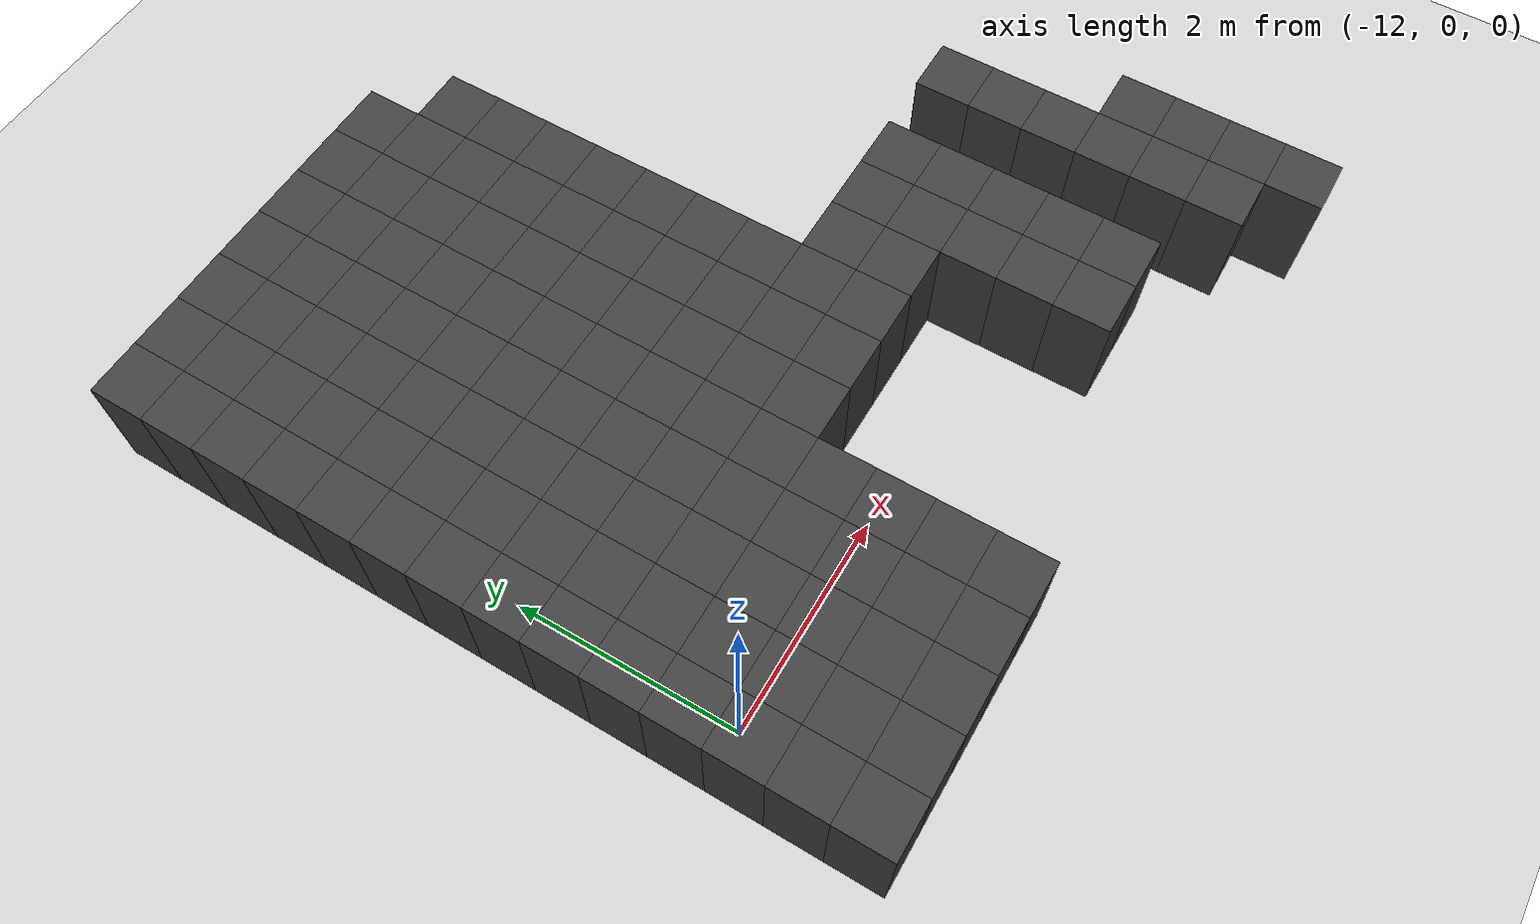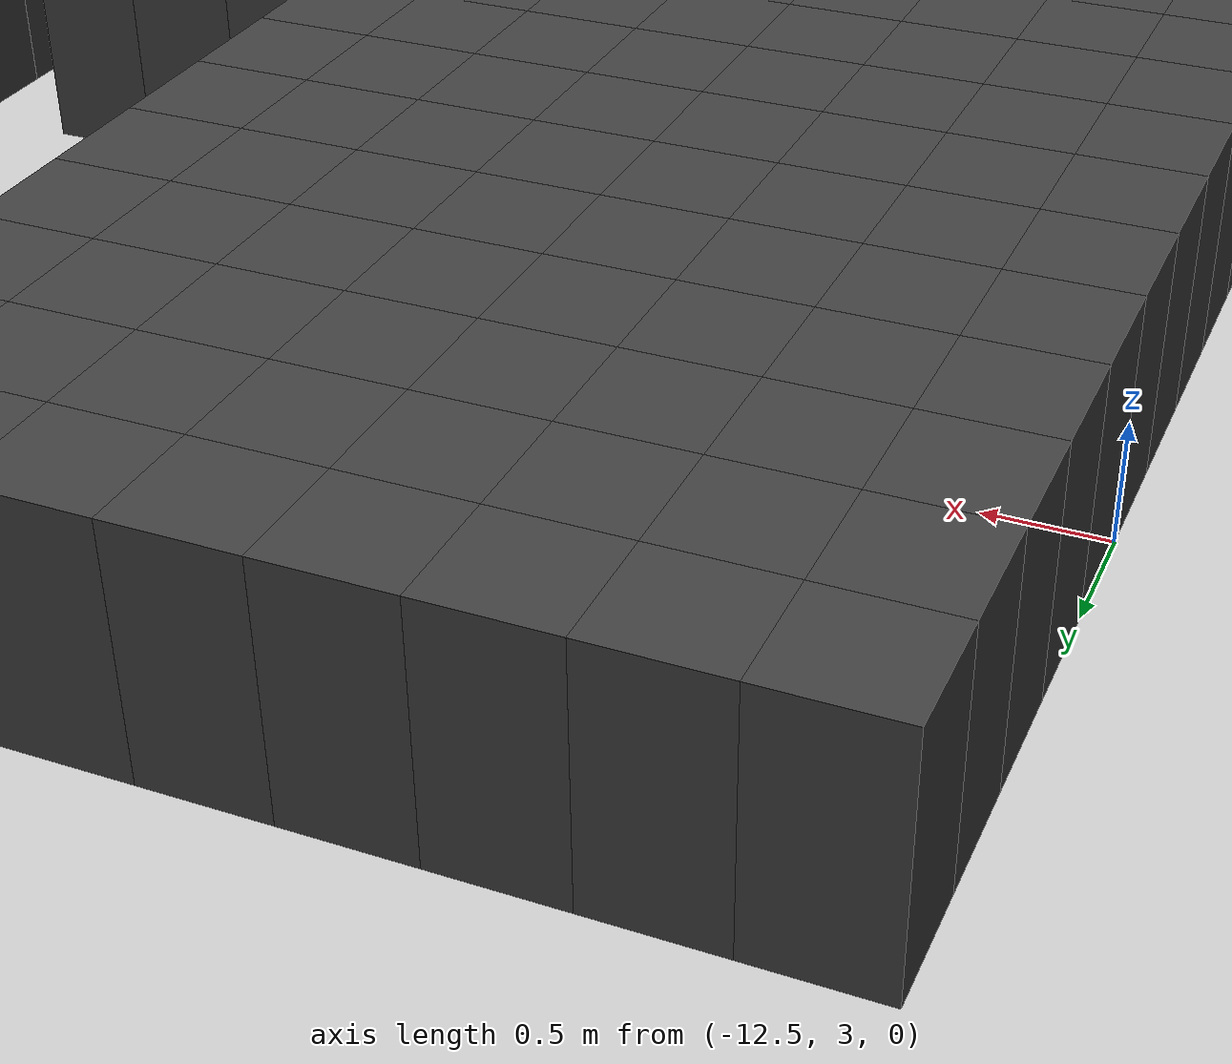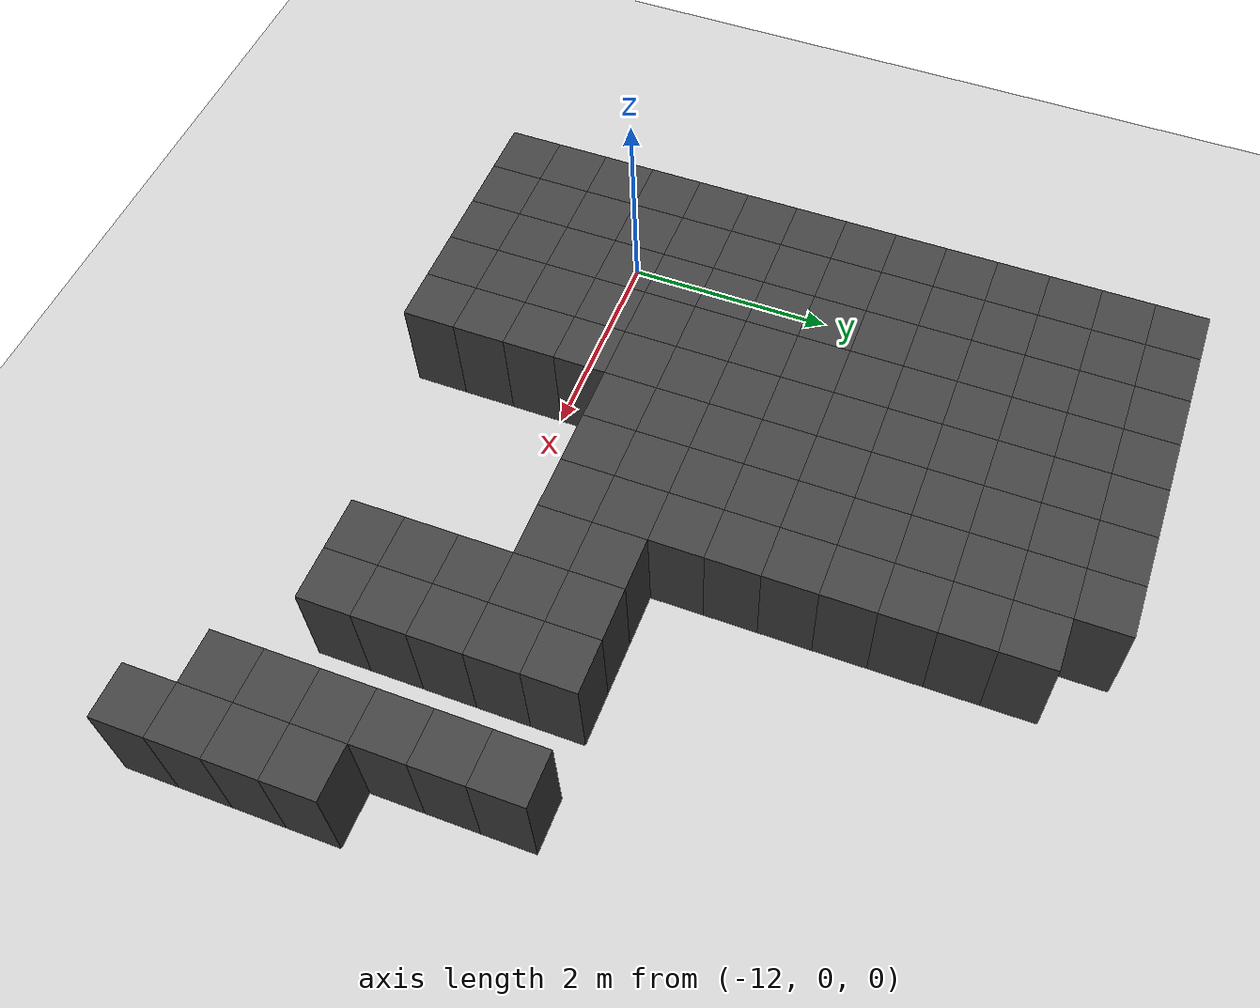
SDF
<sdf version="1.7">
 <world name="map_14888">
  <model name="ground_plane">
   <static>true</static>
   <link name="link">
    <collision name="collision">
     <geometry><plane><normal>0 0 1</normal><size>200 200</size></plane></geometry>
    </collision>
    <visual name="visual">
     <geometry><plane><normal>0 0 1</normal><size>200 200</size></plane></geometry>
     <material><ambient>0.8 0.8 0.8 1</ambient><diffuse>0.8 0.8 0.8 1</diffuse></material>
    </visual>
   </link>
  </model>
  <model name="maze_environment">
   <static>true</static>
   <link name="wall_527">
    <pose>-12.250 5.250 0.500 0 0 0</pose>
    <collision name="col"><geometry><box><size>0.5 0.5 1.0</size></box></geometry></collision>
    <visual name="vis">
     <geometry><box><size>0.5 0.5 1.0</size></box></geometry>
     <material><ambient>0.15 0.15 0.15 1</ambient><diffuse>0.25 0.25 0.25 1</diffuse></material>
    </visual>
   </link>
   <link name="wall_528">
    <pose>-11.750 5.250 0.500 0 0 0</pose>
    <collision name="col"><geometry><box><size>0.5 0.5 1.0</size></box></geometry></collision>
    <visual name="vis">
     <geometry><box><size>0.5 0.5 1.0</size></box></geometry>
     <material><ambient>0.15 0.15 0.15 1</ambient><diffuse>0.25 0.25 0.25 1</diffuse></material>
    </visual>
   </link>
   <link name="wall_529">
    <pose>-11.250 5.250 0.500 0 0 0</pose>
    <collision name="col"><geometry><box><size>0.5 0.5 1.0</size></box></geometry></collision>
    <visual name="vis">
     <geometry><box><size>0.5 0.5 1.0</size></box></geometry>
     <material><ambient>0.15 0.15 0.15 1</ambient><diffuse>0.25 0.25 0.25 1</diffuse></material>
    </visual>
   </link>
   <link name="wall_530">
    <pose>-10.750 5.250 0.500 0 0 0</pose>
    <collision name="col"><geometry><box><size>0.5 0.5 1.0</size></box></geometry></collision>
    <visual name="vis">
     <geometry><box><size>0.5 0.5 1.0</size></box></geometry>
     <material><ambient>0.15 0.15 0.15 1</ambient><diffuse>0.25 0.25 0.25 1</diffuse></material>
    </visual>
   </link>
   <link name="wall_531">
    <pose>-10.250 5.250 0.500 0 0 0</pose>
    <collision name="col"><geometry><box><size>0.5 0.5 1.0</size></box></geometry></collision>
    <visual name="vis">
     <geometry><box><size>0.5 0.5 1.0</size></box></geometry>
     <material><ambient>0.15 0.15 0.15 1</ambient><diffuse>0.25 0.25 0.25 1</diffuse></material>
    </visual>
   </link>
   <link name="wall_532">
    <pose>-9.750 5.250 0.500 0 0 0</pose>
    <collision name="col"><geometry><box><size>0.5 0.5 1.0</size></box></geometry></collision>
    <visual name="vis">
     <geometry><box><size>0.5 0.5 1.0</size></box></geometry>
     <material><ambient>0.15 0.15 0.15 1</ambient><diffuse>0.25 0.25 0.25 1</diffuse></material>
    </visual>
   </link>
   <link name="wall_533">
    <pose>-9.250 5.250 0.500 0 0 0</pose>
    <collision name="col"><geometry><box><size>0.5 0.5 1.0</size></box></geometry></collision>
    <visual name="vis">
     <geometry><box><size>0.5 0.5 1.0</size></box></geometry>
     <material><ambient>0.15 0.15 0.15 1</ambient><diffuse>0.25 0.25 0.25 1</diffuse></material>
    </visual>
   </link>
   <link name="wall_562">
    <pose>-12.250 4.750 0.500 0 0 0</pose>
    <collision name="col"><geometry><box><size>0.5 0.5 1.0</size></box></geometry></collision>
    <visual name="vis">
     <geometry><box><size>0.5 0.5 1.0</size></box></geometry>
     <material><ambient>0.15 0.15 0.15 1</ambient><diffuse>0.25 0.25 0.25 1</diffuse></material>
    </visual>
   </link>
   <link name="wall_563">
    <pose>-11.750 4.750 0.500 0 0 0</pose>
    <collision name="col"><geometry><box><size>0.5 0.5 1.0</size></box></geometry></collision>
    <visual name="vis">
     <geometry><box><size>0.5 0.5 1.0</size></box></geometry>
     <material><ambient>0.15 0.15 0.15 1</ambient><diffuse>0.25 0.25 0.25 1</diffuse></material>
    </visual>
   </link>
   <link name="wall_564">
    <pose>-11.250 4.750 0.500 0 0 0</pose>
    <collision name="col"><geometry><box><size>0.5 0.5 1.0</size></box></geometry></collision>
    <visual name="vis">
     <geometry><box><size>0.5 0.5 1.0</size></box></geometry>
     <material><ambient>0.15 0.15 0.15 1</ambient><diffuse>0.25 0.25 0.25 1</diffuse></material>
    </visual>
   </link>
   <link name="wall_565">
    <pose>-10.750 4.750 0.500 0 0 0</pose>
    <collision name="col"><geometry><box><size>0.5 0.5 1.0</size></box></geometry></collision>
    <visual name="vis">
     <geometry><box><size>0.5 0.5 1.0</size></box></geometry>
     <material><ambient>0.15 0.15 0.15 1</ambient><diffuse>0.25 0.25 0.25 1</diffuse></material>
    </visual>
   </link>
   <link name="wall_566">
    <pose>-10.250 4.750 0.500 0 0 0</pose>
    <collision name="col"><geometry><box><size>0.5 0.5 1.0</size></box></geometry></collision>
    <visual name="vis">
     <geometry><box><size>0.5 0.5 1.0</size></box></geometry>
     <material><ambient>0.15 0.15 0.15 1</ambient><diffuse>0.25 0.25 0.25 1</diffuse></material>
    </visual>
   </link>
   <link name="wall_567">
    <pose>-9.750 4.750 0.500 0 0 0</pose>
    <collision name="col"><geometry><box><size>0.5 0.5 1.0</size></box></geometry></collision>
    <visual name="vis">
     <geometry><box><size>0.5 0.5 1.0</size></box></geometry>
     <material><ambient>0.15 0.15 0.15 1</ambient><diffuse>0.25 0.25 0.25 1</diffuse></material>
    </visual>
   </link>
   <link name="wall_568">
    <pose>-9.250 4.750 0.500 0 0 0</pose>
    <collision name="col"><geometry><box><size>0.5 0.5 1.0</size></box></geometry></collision>
    <visual name="vis">
     <geometry><box><size>0.5 0.5 1.0</size></box></geometry>
     <material><ambient>0.15 0.15 0.15 1</ambient><diffuse>0.25 0.25 0.25 1</diffuse></material>
    </visual>
   </link>
   <link name="wall_569">
    <pose>-8.750 4.750 0.500 0 0 0</pose>
    <collision name="col"><geometry><box><size>0.5 0.5 1.0</size></box></geometry></collision>
    <visual name="vis">
     <geometry><box><size>0.5 0.5 1.0</size></box></geometry>
     <material><ambient>0.15 0.15 0.15 1</ambient><diffuse>0.25 0.25 0.25 1</diffuse></material>
    </visual>
   </link>
   <link name="wall_590">
    <pose>-12.250 4.250 0.500 0 0 0</pose>
    <collision name="col"><geometry><box><size>0.5 0.5 1.0</size></box></geometry></collision>
    <visual name="vis">
     <geometry><box><size>0.5 0.5 1.0</size></box></geometry>
     <material><ambient>0.15 0.15 0.15 1</ambient><diffuse>0.25 0.25 0.25 1</diffuse></material>
    </visual>
   </link>
   <link name="wall_591">
    <pose>-11.750 4.250 0.500 0 0 0</pose>
    <collision name="col"><geometry><box><size>0.5 0.5 1.0</size></box></geometry></collision>
    <visual name="vis">
     <geometry><box><size>0.5 0.5 1.0</size></box></geometry>
     <material><ambient>0.15 0.15 0.15 1</ambient><diffuse>0.25 0.25 0.25 1</diffuse></material>
    </visual>
   </link>
   <link name="wall_592">
    <pose>-11.250 4.250 0.500 0 0 0</pose>
    <collision name="col"><geometry><box><size>0.5 0.5 1.0</size></box></geometry></collision>
    <visual name="vis">
     <geometry><box><size>0.5 0.5 1.0</size></box></geometry>
     <material><ambient>0.15 0.15 0.15 1</ambient><diffuse>0.25 0.25 0.25 1</diffuse></material>
    </visual>
   </link>
   <link name="wall_593">
    <pose>-10.750 4.250 0.500 0 0 0</pose>
    <collision name="col"><geometry><box><size>0.5 0.5 1.0</size></box></geometry></collision>
    <visual name="vis">
     <geometry><box><size>0.5 0.5 1.0</size></box></geometry>
     <material><ambient>0.15 0.15 0.15 1</ambient><diffuse>0.25 0.25 0.25 1</diffuse></material>
    </visual>
   </link>
   <link name="wall_594">
    <pose>-10.250 4.250 0.500 0 0 0</pose>
    <collision name="col"><geometry><box><size>0.5 0.5 1.0</size></box></geometry></collision>
    <visual name="vis">
     <geometry><box><size>0.5 0.5 1.0</size></box></geometry>
     <material><ambient>0.15 0.15 0.15 1</ambient><diffuse>0.25 0.25 0.25 1</diffuse></material>
    </visual>
   </link>
   <link name="wall_595">
    <pose>-9.750 4.250 0.500 0 0 0</pose>
    <collision name="col"><geometry><box><size>0.5 0.5 1.0</size></box></geometry></collision>
    <visual name="vis">
     <geometry><box><size>0.5 0.5 1.0</size></box></geometry>
     <material><ambient>0.15 0.15 0.15 1</ambient><diffuse>0.25 0.25 0.25 1</diffuse></material>
    </visual>
   </link>
   <link name="wall_596">
    <pose>-9.250 4.250 0.500 0 0 0</pose>
    <collision name="col"><geometry><box><size>0.5 0.5 1.0</size></box></geometry></collision>
    <visual name="vis">
     <geometry><box><size>0.5 0.5 1.0</size></box></geometry>
     <material><ambient>0.15 0.15 0.15 1</ambient><diffuse>0.25 0.25 0.25 1</diffuse></material>
    </visual>
   </link>
   <link name="wall_597">
    <pose>-8.750 4.250 0.500 0 0 0</pose>
    <collision name="col"><geometry><box><size>0.5 0.5 1.0</size></box></geometry></collision>
    <visual name="vis">
     <geometry><box><size>0.5 0.5 1.0</size></box></geometry>
     <material><ambient>0.15 0.15 0.15 1</ambient><diffuse>0.25 0.25 0.25 1</diffuse></material>
    </visual>
   </link>
   <link name="wall_614">
    <pose>-12.250 3.750 0.500 0 0 0</pose>
    <collision name="col"><geometry><box><size>0.5 0.5 1.0</size></box></geometry></collision>
    <visual name="vis">
     <geometry><box><size>0.5 0.5 1.0</size></box></geometry>
     <material><ambient>0.15 0.15 0.15 1</ambient><diffuse>0.25 0.25 0.25 1</diffuse></material>
    </visual>
   </link>
   <link name="wall_615">
    <pose>-11.750 3.750 0.500 0 0 0</pose>
    <collision name="col"><geometry><box><size>0.5 0.5 1.0</size></box></geometry></collision>
    <visual name="vis">
     <geometry><box><size>0.5 0.5 1.0</size></box></geometry>
     <material><ambient>0.15 0.15 0.15 1</ambient><diffuse>0.25 0.25 0.25 1</diffuse></material>
    </visual>
   </link>
   <link name="wall_616">
    <pose>-11.250 3.750 0.500 0 0 0</pose>
    <collision name="col"><geometry><box><size>0.5 0.5 1.0</size></box></geometry></collision>
    <visual name="vis">
     <geometry><box><size>0.5 0.5 1.0</size></box></geometry>
     <material><ambient>0.15 0.15 0.15 1</ambient><diffuse>0.25 0.25 0.25 1</diffuse></material>
    </visual>
   </link>
   <link name="wall_617">
    <pose>-10.750 3.750 0.500 0 0 0</pose>
    <collision name="col"><geometry><box><size>0.5 0.5 1.0</size></box></geometry></collision>
    <visual name="vis">
     <geometry><box><size>0.5 0.5 1.0</size></box></geometry>
     <material><ambient>0.15 0.15 0.15 1</ambient><diffuse>0.25 0.25 0.25 1</diffuse></material>
    </visual>
   </link>
   <link name="wall_618">
    <pose>-10.250 3.750 0.500 0 0 0</pose>
    <collision name="col"><geometry><box><size>0.5 0.5 1.0</size></box></geometry></collision>
    <visual name="vis">
     <geometry><box><size>0.5 0.5 1.0</size></box></geometry>
     <material><ambient>0.15 0.15 0.15 1</ambient><diffuse>0.25 0.25 0.25 1</diffuse></material>
    </visual>
   </link>
   <link name="wall_619">
    <pose>-9.750 3.750 0.500 0 0 0</pose>
    <collision name="col"><geometry><box><size>0.5 0.5 1.0</size></box></geometry></collision>
    <visual name="vis">
     <geometry><box><size>0.5 0.5 1.0</size></box></geometry>
     <material><ambient>0.15 0.15 0.15 1</ambient><diffuse>0.25 0.25 0.25 1</diffuse></material>
    </visual>
   </link>
   <link name="wall_620">
    <pose>-9.250 3.750 0.500 0 0 0</pose>
    <collision name="col"><geometry><box><size>0.5 0.5 1.0</size></box></geometry></collision>
    <visual name="vis">
     <geometry><box><size>0.5 0.5 1.0</size></box></geometry>
     <material><ambient>0.15 0.15 0.15 1</ambient><diffuse>0.25 0.25 0.25 1</diffuse></material>
    </visual>
   </link>
   <link name="wall_621">
    <pose>-8.750 3.750 0.500 0 0 0</pose>
    <collision name="col"><geometry><box><size>0.5 0.5 1.0</size></box></geometry></collision>
    <visual name="vis">
     <geometry><box><size>0.5 0.5 1.0</size></box></geometry>
     <material><ambient>0.15 0.15 0.15 1</ambient><diffuse>0.25 0.25 0.25 1</diffuse></material>
    </visual>
   </link>
   <link name="wall_634">
    <pose>-12.250 3.250 0.500 0 0 0</pose>
    <collision name="col"><geometry><box><size>0.5 0.5 1.0</size></box></geometry></collision>
    <visual name="vis">
     <geometry><box><size>0.5 0.5 1.0</size></box></geometry>
     <material><ambient>0.15 0.15 0.15 1</ambient><diffuse>0.25 0.25 0.25 1</diffuse></material>
    </visual>
   </link>
   <link name="wall_635">
    <pose>-11.750 3.250 0.500 0 0 0</pose>
    <collision name="col"><geometry><box><size>0.5 0.5 1.0</size></box></geometry></collision>
    <visual name="vis">
     <geometry><box><size>0.5 0.5 1.0</size></box></geometry>
     <material><ambient>0.15 0.15 0.15 1</ambient><diffuse>0.25 0.25 0.25 1</diffuse></material>
    </visual>
   </link>
   <link name="wall_636">
    <pose>-11.250 3.250 0.500 0 0 0</pose>
    <collision name="col"><geometry><box><size>0.5 0.5 1.0</size></box></geometry></collision>
    <visual name="vis">
     <geometry><box><size>0.5 0.5 1.0</size></box></geometry>
     <material><ambient>0.15 0.15 0.15 1</ambient><diffuse>0.25 0.25 0.25 1</diffuse></material>
    </visual>
   </link>
   <link name="wall_637">
    <pose>-10.750 3.250 0.500 0 0 0</pose>
    <collision name="col"><geometry><box><size>0.5 0.5 1.0</size></box></geometry></collision>
    <visual name="vis">
     <geometry><box><size>0.5 0.5 1.0</size></box></geometry>
     <material><ambient>0.15 0.15 0.15 1</ambient><diffuse>0.25 0.25 0.25 1</diffuse></material>
    </visual>
   </link>
   <link name="wall_638">
    <pose>-10.250 3.250 0.500 0 0 0</pose>
    <collision name="col"><geometry><box><size>0.5 0.5 1.0</size></box></geometry></collision>
    <visual name="vis">
     <geometry><box><size>0.5 0.5 1.0</size></box></geometry>
     <material><ambient>0.15 0.15 0.15 1</ambient><diffuse>0.25 0.25 0.25 1</diffuse></material>
    </visual>
   </link>
   <link name="wall_639">
    <pose>-9.750 3.250 0.500 0 0 0</pose>
    <collision name="col"><geometry><box><size>0.5 0.5 1.0</size></box></geometry></collision>
    <visual name="vis">
     <geometry><box><size>0.5 0.5 1.0</size></box></geometry>
     <material><ambient>0.15 0.15 0.15 1</ambient><diffuse>0.25 0.25 0.25 1</diffuse></material>
    </visual>
   </link>
   <link name="wall_640">
    <pose>-9.250 3.250 0.500 0 0 0</pose>
    <collision name="col"><geometry><box><size>0.5 0.5 1.0</size></box></geometry></collision>
    <visual name="vis">
     <geometry><box><size>0.5 0.5 1.0</size></box></geometry>
     <material><ambient>0.15 0.15 0.15 1</ambient><diffuse>0.25 0.25 0.25 1</diffuse></material>
    </visual>
   </link>
   <link name="wall_641">
    <pose>-8.750 3.250 0.500 0 0 0</pose>
    <collision name="col"><geometry><box><size>0.5 0.5 1.0</size></box></geometry></collision>
    <visual name="vis">
     <geometry><box><size>0.5 0.5 1.0</size></box></geometry>
     <material><ambient>0.15 0.15 0.15 1</ambient><diffuse>0.25 0.25 0.25 1</diffuse></material>
    </visual>
   </link>
   <link name="wall_654">
    <pose>-12.250 2.750 0.500 0 0 0</pose>
    <collision name="col"><geometry><box><size>0.5 0.5 1.0</size></box></geometry></collision>
    <visual name="vis">
     <geometry><box><size>0.5 0.5 1.0</size></box></geometry>
     <material><ambient>0.15 0.15 0.15 1</ambient><diffuse>0.25 0.25 0.25 1</diffuse></material>
    </visual>
   </link>
   <link name="wall_655">
    <pose>-11.750 2.750 0.500 0 0 0</pose>
    <collision name="col"><geometry><box><size>0.5 0.5 1.0</size></box></geometry></collision>
    <visual name="vis">
     <geometry><box><size>0.5 0.5 1.0</size></box></geometry>
     <material><ambient>0.15 0.15 0.15 1</ambient><diffuse>0.25 0.25 0.25 1</diffuse></material>
    </visual>
   </link>
   <link name="wall_656">
    <pose>-11.250 2.750 0.500 0 0 0</pose>
    <collision name="col"><geometry><box><size>0.5 0.5 1.0</size></box></geometry></collision>
    <visual name="vis">
     <geometry><box><size>0.5 0.5 1.0</size></box></geometry>
     <material><ambient>0.15 0.15 0.15 1</ambient><diffuse>0.25 0.25 0.25 1</diffuse></material>
    </visual>
   </link>
   <link name="wall_657">
    <pose>-10.750 2.750 0.500 0 0 0</pose>
    <collision name="col"><geometry><box><size>0.5 0.5 1.0</size></box></geometry></collision>
    <visual name="vis">
     <geometry><box><size>0.5 0.5 1.0</size></box></geometry>
     <material><ambient>0.15 0.15 0.15 1</ambient><diffuse>0.25 0.25 0.25 1</diffuse></material>
    </visual>
   </link>
   <link name="wall_658">
    <pose>-10.250 2.750 0.500 0 0 0</pose>
    <collision name="col"><geometry><box><size>0.5 0.5 1.0</size></box></geometry></collision>
    <visual name="vis">
     <geometry><box><size>0.5 0.5 1.0</size></box></geometry>
     <material><ambient>0.15 0.15 0.15 1</ambient><diffuse>0.25 0.25 0.25 1</diffuse></material>
    </visual>
   </link>
   <link name="wall_659">
    <pose>-9.750 2.750 0.500 0 0 0</pose>
    <collision name="col"><geometry><box><size>0.5 0.5 1.0</size></box></geometry></collision>
    <visual name="vis">
     <geometry><box><size>0.5 0.5 1.0</size></box></geometry>
     <material><ambient>0.15 0.15 0.15 1</ambient><diffuse>0.25 0.25 0.25 1</diffuse></material>
    </visual>
   </link>
   <link name="wall_660">
    <pose>-9.250 2.750 0.500 0 0 0</pose>
    <collision name="col"><geometry><box><size>0.5 0.5 1.0</size></box></geometry></collision>
    <visual name="vis">
     <geometry><box><size>0.5 0.5 1.0</size></box></geometry>
     <material><ambient>0.15 0.15 0.15 1</ambient><diffuse>0.25 0.25 0.25 1</diffuse></material>
    </visual>
   </link>
   <link name="wall_661">
    <pose>-8.750 2.750 0.500 0 0 0</pose>
    <collision name="col"><geometry><box><size>0.5 0.5 1.0</size></box></geometry></collision>
    <visual name="vis">
     <geometry><box><size>0.5 0.5 1.0</size></box></geometry>
     <material><ambient>0.15 0.15 0.15 1</ambient><diffuse>0.25 0.25 0.25 1</diffuse></material>
    </visual>
   </link>
   <link name="wall_678">
    <pose>-12.250 2.250 0.500 0 0 0</pose>
    <collision name="col"><geometry><box><size>0.5 0.5 1.0</size></box></geometry></collision>
    <visual name="vis">
     <geometry><box><size>0.5 0.5 1.0</size></box></geometry>
     <material><ambient>0.15 0.15 0.15 1</ambient><diffuse>0.25 0.25 0.25 1</diffuse></material>
    </visual>
   </link>
   <link name="wall_679">
    <pose>-11.750 2.250 0.500 0 0 0</pose>
    <collision name="col"><geometry><box><size>0.5 0.5 1.0</size></box></geometry></collision>
    <visual name="vis">
     <geometry><box><size>0.5 0.5 1.0</size></box></geometry>
     <material><ambient>0.15 0.15 0.15 1</ambient><diffuse>0.25 0.25 0.25 1</diffuse></material>
    </visual>
   </link>
   <link name="wall_680">
    <pose>-11.250 2.250 0.500 0 0 0</pose>
    <collision name="col"><geometry><box><size>0.5 0.5 1.0</size></box></geometry></collision>
    <visual name="vis">
     <geometry><box><size>0.5 0.5 1.0</size></box></geometry>
     <material><ambient>0.15 0.15 0.15 1</ambient><diffuse>0.25 0.25 0.25 1</diffuse></material>
    </visual>
   </link>
   <link name="wall_681">
    <pose>-10.750 2.250 0.500 0 0 0</pose>
    <collision name="col"><geometry><box><size>0.5 0.5 1.0</size></box></geometry></collision>
    <visual name="vis">
     <geometry><box><size>0.5 0.5 1.0</size></box></geometry>
     <material><ambient>0.15 0.15 0.15 1</ambient><diffuse>0.25 0.25 0.25 1</diffuse></material>
    </visual>
   </link>
   <link name="wall_682">
    <pose>-10.250 2.250 0.500 0 0 0</pose>
    <collision name="col"><geometry><box><size>0.5 0.5 1.0</size></box></geometry></collision>
    <visual name="vis">
     <geometry><box><size>0.5 0.5 1.0</size></box></geometry>
     <material><ambient>0.15 0.15 0.15 1</ambient><diffuse>0.25 0.25 0.25 1</diffuse></material>
    </visual>
   </link>
   <link name="wall_683">
    <pose>-9.750 2.250 0.500 0 0 0</pose>
    <collision name="col"><geometry><box><size>0.5 0.5 1.0</size></box></geometry></collision>
    <visual name="vis">
     <geometry><box><size>0.5 0.5 1.0</size></box></geometry>
     <material><ambient>0.15 0.15 0.15 1</ambient><diffuse>0.25 0.25 0.25 1</diffuse></material>
    </visual>
   </link>
   <link name="wall_684">
    <pose>-9.250 2.250 0.500 0 0 0</pose>
    <collision name="col"><geometry><box><size>0.5 0.5 1.0</size></box></geometry></collision>
    <visual name="vis">
     <geometry><box><size>0.5 0.5 1.0</size></box></geometry>
     <material><ambient>0.15 0.15 0.15 1</ambient><diffuse>0.25 0.25 0.25 1</diffuse></material>
    </visual>
   </link>
   <link name="wall_685">
    <pose>-8.750 2.250 0.500 0 0 0</pose>
    <collision name="col"><geometry><box><size>0.5 0.5 1.0</size></box></geometry></collision>
    <visual name="vis">
     <geometry><box><size>0.5 0.5 1.0</size></box></geometry>
     <material><ambient>0.15 0.15 0.15 1</ambient><diffuse>0.25 0.25 0.25 1</diffuse></material>
    </visual>
   </link>
   <link name="wall_702">
    <pose>-12.250 1.750 0.500 0 0 0</pose>
    <collision name="col"><geometry><box><size>0.5 0.5 1.0</size></box></geometry></collision>
    <visual name="vis">
     <geometry><box><size>0.5 0.5 1.0</size></box></geometry>
     <material><ambient>0.15 0.15 0.15 1</ambient><diffuse>0.25 0.25 0.25 1</diffuse></material>
    </visual>
   </link>
   <link name="wall_703">
    <pose>-11.750 1.750 0.500 0 0 0</pose>
    <collision name="col"><geometry><box><size>0.5 0.5 1.0</size></box></geometry></collision>
    <visual name="vis">
     <geometry><box><size>0.5 0.5 1.0</size></box></geometry>
     <material><ambient>0.15 0.15 0.15 1</ambient><diffuse>0.25 0.25 0.25 1</diffuse></material>
    </visual>
   </link>
   <link name="wall_704">
    <pose>-11.250 1.750 0.500 0 0 0</pose>
    <collision name="col"><geometry><box><size>0.5 0.5 1.0</size></box></geometry></collision>
    <visual name="vis">
     <geometry><box><size>0.5 0.5 1.0</size></box></geometry>
     <material><ambient>0.15 0.15 0.15 1</ambient><diffuse>0.25 0.25 0.25 1</diffuse></material>
    </visual>
   </link>
   <link name="wall_705">
    <pose>-10.750 1.750 0.500 0 0 0</pose>
    <collision name="col"><geometry><box><size>0.5 0.5 1.0</size></box></geometry></collision>
    <visual name="vis">
     <geometry><box><size>0.5 0.5 1.0</size></box></geometry>
     <material><ambient>0.15 0.15 0.15 1</ambient><diffuse>0.25 0.25 0.25 1</diffuse></material>
    </visual>
   </link>
   <link name="wall_706">
    <pose>-10.250 1.750 0.500 0 0 0</pose>
    <collision name="col"><geometry><box><size>0.5 0.5 1.0</size></box></geometry></collision>
    <visual name="vis">
     <geometry><box><size>0.5 0.5 1.0</size></box></geometry>
     <material><ambient>0.15 0.15 0.15 1</ambient><diffuse>0.25 0.25 0.25 1</diffuse></material>
    </visual>
   </link>
   <link name="wall_707">
    <pose>-9.750 1.750 0.500 0 0 0</pose>
    <collision name="col"><geometry><box><size>0.5 0.5 1.0</size></box></geometry></collision>
    <visual name="vis">
     <geometry><box><size>0.5 0.5 1.0</size></box></geometry>
     <material><ambient>0.15 0.15 0.15 1</ambient><diffuse>0.25 0.25 0.25 1</diffuse></material>
    </visual>
   </link>
   <link name="wall_708">
    <pose>-9.250 1.750 0.500 0 0 0</pose>
    <collision name="col"><geometry><box><size>0.5 0.5 1.0</size></box></geometry></collision>
    <visual name="vis">
     <geometry><box><size>0.5 0.5 1.0</size></box></geometry>
     <material><ambient>0.15 0.15 0.15 1</ambient><diffuse>0.25 0.25 0.25 1</diffuse></material>
    </visual>
   </link>
   <link name="wall_709">
    <pose>-8.750 1.750 0.500 0 0 0</pose>
    <collision name="col"><geometry><box><size>0.5 0.5 1.0</size></box></geometry></collision>
    <visual name="vis">
     <geometry><box><size>0.5 0.5 1.0</size></box></geometry>
     <material><ambient>0.15 0.15 0.15 1</ambient><diffuse>0.25 0.25 0.25 1</diffuse></material>
    </visual>
   </link>
   <link name="wall_739">
    <pose>-12.250 1.250 0.500 0 0 0</pose>
    <collision name="col"><geometry><box><size>0.5 0.5 1.0</size></box></geometry></collision>
    <visual name="vis">
     <geometry><box><size>0.5 0.5 1.0</size></box></geometry>
     <material><ambient>0.15 0.15 0.15 1</ambient><diffuse>0.25 0.25 0.25 1</diffuse></material>
    </visual>
   </link>
   <link name="wall_740">
    <pose>-11.750 1.250 0.500 0 0 0</pose>
    <collision name="col"><geometry><box><size>0.5 0.5 1.0</size></box></geometry></collision>
    <visual name="vis">
     <geometry><box><size>0.5 0.5 1.0</size></box></geometry>
     <material><ambient>0.15 0.15 0.15 1</ambient><diffuse>0.25 0.25 0.25 1</diffuse></material>
    </visual>
   </link>
   <link name="wall_741">
    <pose>-11.250 1.250 0.500 0 0 0</pose>
    <collision name="col"><geometry><box><size>0.5 0.5 1.0</size></box></geometry></collision>
    <visual name="vis">
     <geometry><box><size>0.5 0.5 1.0</size></box></geometry>
     <material><ambient>0.15 0.15 0.15 1</ambient><diffuse>0.25 0.25 0.25 1</diffuse></material>
    </visual>
   </link>
   <link name="wall_742">
    <pose>-10.750 1.250 0.500 0 0 0</pose>
    <collision name="col"><geometry><box><size>0.5 0.5 1.0</size></box></geometry></collision>
    <visual name="vis">
     <geometry><box><size>0.5 0.5 1.0</size></box></geometry>
     <material><ambient>0.15 0.15 0.15 1</ambient><diffuse>0.25 0.25 0.25 1</diffuse></material>
    </visual>
   </link>
   <link name="wall_743">
    <pose>-10.250 1.250 0.500 0 0 0</pose>
    <collision name="col"><geometry><box><size>0.5 0.5 1.0</size></box></geometry></collision>
    <visual name="vis">
     <geometry><box><size>0.5 0.5 1.0</size></box></geometry>
     <material><ambient>0.15 0.15 0.15 1</ambient><diffuse>0.25 0.25 0.25 1</diffuse></material>
    </visual>
   </link>
   <link name="wall_744">
    <pose>-9.750 1.250 0.500 0 0 0</pose>
    <collision name="col"><geometry><box><size>0.5 0.5 1.0</size></box></geometry></collision>
    <visual name="vis">
     <geometry><box><size>0.5 0.5 1.0</size></box></geometry>
     <material><ambient>0.15 0.15 0.15 1</ambient><diffuse>0.25 0.25 0.25 1</diffuse></material>
    </visual>
   </link>
   <link name="wall_745">
    <pose>-9.250 1.250 0.500 0 0 0</pose>
    <collision name="col"><geometry><box><size>0.5 0.5 1.0</size></box></geometry></collision>
    <visual name="vis">
     <geometry><box><size>0.5 0.5 1.0</size></box></geometry>
     <material><ambient>0.15 0.15 0.15 1</ambient><diffuse>0.25 0.25 0.25 1</diffuse></material>
    </visual>
   </link>
   <link name="wall_746">
    <pose>-8.750 1.250 0.500 0 0 0</pose>
    <collision name="col"><geometry><box><size>0.5 0.5 1.0</size></box></geometry></collision>
    <visual name="vis">
     <geometry><box><size>0.5 0.5 1.0</size></box></geometry>
     <material><ambient>0.15 0.15 0.15 1</ambient><diffuse>0.25 0.25 0.25 1</diffuse></material>
    </visual>
   </link>
   <link name="wall_747">
    <pose>-8.250 1.250 0.500 0 0 0</pose>
    <collision name="col"><geometry><box><size>0.5 0.5 1.0</size></box></geometry></collision>
    <visual name="vis">
     <geometry><box><size>0.5 0.5 1.0</size></box></geometry>
     <material><ambient>0.15 0.15 0.15 1</ambient><diffuse>0.25 0.25 0.25 1</diffuse></material>
    </visual>
   </link>
   <link name="wall_748">
    <pose>-7.750 1.250 0.500 0 0 0</pose>
    <collision name="col"><geometry><box><size>0.5 0.5 1.0</size></box></geometry></collision>
    <visual name="vis">
     <geometry><box><size>0.5 0.5 1.0</size></box></geometry>
     <material><ambient>0.15 0.15 0.15 1</ambient><diffuse>0.25 0.25 0.25 1</diffuse></material>
    </visual>
   </link>
   <link name="wall_749">
    <pose>-7.250 1.250 0.500 0 0 0</pose>
    <collision name="col"><geometry><box><size>0.5 0.5 1.0</size></box></geometry></collision>
    <visual name="vis">
     <geometry><box><size>0.5 0.5 1.0</size></box></geometry>
     <material><ambient>0.15 0.15 0.15 1</ambient><diffuse>0.25 0.25 0.25 1</diffuse></material>
    </visual>
   </link>
   <link name="wall_750">
    <pose>-6.250 1.250 0.500 0 0 0</pose>
    <collision name="col"><geometry><box><size>0.5 0.5 1.0</size></box></geometry></collision>
    <visual name="vis">
     <geometry><box><size>0.5 0.5 1.0</size></box></geometry>
     <material><ambient>0.15 0.15 0.15 1</ambient><diffuse>0.25 0.25 0.25 1</diffuse></material>
    </visual>
   </link>
   <link name="wall_781">
    <pose>-12.250 0.750 0.500 0 0 0</pose>
    <collision name="col"><geometry><box><size>0.5 0.5 1.0</size></box></geometry></collision>
    <visual name="vis">
     <geometry><box><size>0.5 0.5 1.0</size></box></geometry>
     <material><ambient>0.15 0.15 0.15 1</ambient><diffuse>0.25 0.25 0.25 1</diffuse></material>
    </visual>
   </link>
   <link name="wall_782">
    <pose>-11.750 0.750 0.500 0 0 0</pose>
    <collision name="col"><geometry><box><size>0.5 0.5 1.0</size></box></geometry></collision>
    <visual name="vis">
     <geometry><box><size>0.5 0.5 1.0</size></box></geometry>
     <material><ambient>0.15 0.15 0.15 1</ambient><diffuse>0.25 0.25 0.25 1</diffuse></material>
    </visual>
   </link>
   <link name="wall_783">
    <pose>-11.250 0.750 0.500 0 0 0</pose>
    <collision name="col"><geometry><box><size>0.5 0.5 1.0</size></box></geometry></collision>
    <visual name="vis">
     <geometry><box><size>0.5 0.5 1.0</size></box></geometry>
     <material><ambient>0.15 0.15 0.15 1</ambient><diffuse>0.25 0.25 0.25 1</diffuse></material>
    </visual>
   </link>
   <link name="wall_784">
    <pose>-10.750 0.750 0.500 0 0 0</pose>
    <collision name="col"><geometry><box><size>0.5 0.5 1.0</size></box></geometry></collision>
    <visual name="vis">
     <geometry><box><size>0.5 0.5 1.0</size></box></geometry>
     <material><ambient>0.15 0.15 0.15 1</ambient><diffuse>0.25 0.25 0.25 1</diffuse></material>
    </visual>
   </link>
   <link name="wall_785">
    <pose>-10.250 0.750 0.500 0 0 0</pose>
    <collision name="col"><geometry><box><size>0.5 0.5 1.0</size></box></geometry></collision>
    <visual name="vis">
     <geometry><box><size>0.5 0.5 1.0</size></box></geometry>
     <material><ambient>0.15 0.15 0.15 1</ambient><diffuse>0.25 0.25 0.25 1</diffuse></material>
    </visual>
   </link>
   <link name="wall_786">
    <pose>-9.750 0.750 0.500 0 0 0</pose>
    <collision name="col"><geometry><box><size>0.5 0.5 1.0</size></box></geometry></collision>
    <visual name="vis">
     <geometry><box><size>0.5 0.5 1.0</size></box></geometry>
     <material><ambient>0.15 0.15 0.15 1</ambient><diffuse>0.25 0.25 0.25 1</diffuse></material>
    </visual>
   </link>
   <link name="wall_787">
    <pose>-9.250 0.750 0.500 0 0 0</pose>
    <collision name="col"><geometry><box><size>0.5 0.5 1.0</size></box></geometry></collision>
    <visual name="vis">
     <geometry><box><size>0.5 0.5 1.0</size></box></geometry>
     <material><ambient>0.15 0.15 0.15 1</ambient><diffuse>0.25 0.25 0.25 1</diffuse></material>
    </visual>
   </link>
   <link name="wall_788">
    <pose>-8.750 0.750 0.500 0 0 0</pose>
    <collision name="col"><geometry><box><size>0.5 0.5 1.0</size></box></geometry></collision>
    <visual name="vis">
     <geometry><box><size>0.5 0.5 1.0</size></box></geometry>
     <material><ambient>0.15 0.15 0.15 1</ambient><diffuse>0.25 0.25 0.25 1</diffuse></material>
    </visual>
   </link>
   <link name="wall_789">
    <pose>-8.250 0.750 0.500 0 0 0</pose>
    <collision name="col"><geometry><box><size>0.5 0.5 1.0</size></box></geometry></collision>
    <visual name="vis">
     <geometry><box><size>0.5 0.5 1.0</size></box></geometry>
     <material><ambient>0.15 0.15 0.15 1</ambient><diffuse>0.25 0.25 0.25 1</diffuse></material>
    </visual>
   </link>
   <link name="wall_790">
    <pose>-7.750 0.750 0.500 0 0 0</pose>
    <collision name="col"><geometry><box><size>0.5 0.5 1.0</size></box></geometry></collision>
    <visual name="vis">
     <geometry><box><size>0.5 0.5 1.0</size></box></geometry>
     <material><ambient>0.15 0.15 0.15 1</ambient><diffuse>0.25 0.25 0.25 1</diffuse></material>
    </visual>
   </link>
   <link name="wall_791">
    <pose>-7.250 0.750 0.500 0 0 0</pose>
    <collision name="col"><geometry><box><size>0.5 0.5 1.0</size></box></geometry></collision>
    <visual name="vis">
     <geometry><box><size>0.5 0.5 1.0</size></box></geometry>
     <material><ambient>0.15 0.15 0.15 1</ambient><diffuse>0.25 0.25 0.25 1</diffuse></material>
    </visual>
   </link>
   <link name="wall_792">
    <pose>-6.250 0.750 0.500 0 0 0</pose>
    <collision name="col"><geometry><box><size>0.5 0.5 1.0</size></box></geometry></collision>
    <visual name="vis">
     <geometry><box><size>0.5 0.5 1.0</size></box></geometry>
     <material><ambient>0.15 0.15 0.15 1</ambient><diffuse>0.25 0.25 0.25 1</diffuse></material>
    </visual>
   </link>
   <link name="wall_823">
    <pose>-12.250 0.250 0.500 0 0 0</pose>
    <collision name="col"><geometry><box><size>0.5 0.5 1.0</size></box></geometry></collision>
    <visual name="vis">
     <geometry><box><size>0.5 0.5 1.0</size></box></geometry>
     <material><ambient>0.15 0.15 0.15 1</ambient><diffuse>0.25 0.25 0.25 1</diffuse></material>
    </visual>
   </link>
   <link name="wall_824">
    <pose>-11.750 0.250 0.500 0 0 0</pose>
    <collision name="col"><geometry><box><size>0.5 0.5 1.0</size></box></geometry></collision>
    <visual name="vis">
     <geometry><box><size>0.5 0.5 1.0</size></box></geometry>
     <material><ambient>0.15 0.15 0.15 1</ambient><diffuse>0.25 0.25 0.25 1</diffuse></material>
    </visual>
   </link>
   <link name="wall_825">
    <pose>-11.250 0.250 0.500 0 0 0</pose>
    <collision name="col"><geometry><box><size>0.5 0.5 1.0</size></box></geometry></collision>
    <visual name="vis">
     <geometry><box><size>0.5 0.5 1.0</size></box></geometry>
     <material><ambient>0.15 0.15 0.15 1</ambient><diffuse>0.25 0.25 0.25 1</diffuse></material>
    </visual>
   </link>
   <link name="wall_826">
    <pose>-10.750 0.250 0.500 0 0 0</pose>
    <collision name="col"><geometry><box><size>0.5 0.5 1.0</size></box></geometry></collision>
    <visual name="vis">
     <geometry><box><size>0.5 0.5 1.0</size></box></geometry>
     <material><ambient>0.15 0.15 0.15 1</ambient><diffuse>0.25 0.25 0.25 1</diffuse></material>
    </visual>
   </link>
   <link name="wall_827">
    <pose>-10.250 0.250 0.500 0 0 0</pose>
    <collision name="col"><geometry><box><size>0.5 0.5 1.0</size></box></geometry></collision>
    <visual name="vis">
     <geometry><box><size>0.5 0.5 1.0</size></box></geometry>
     <material><ambient>0.15 0.15 0.15 1</ambient><diffuse>0.25 0.25 0.25 1</diffuse></material>
    </visual>
   </link>
   <link name="wall_828">
    <pose>-7.750 0.250 0.500 0 0 0</pose>
    <collision name="col"><geometry><box><size>0.5 0.5 1.0</size></box></geometry></collision>
    <visual name="vis">
     <geometry><box><size>0.5 0.5 1.0</size></box></geometry>
     <material><ambient>0.15 0.15 0.15 1</ambient><diffuse>0.25 0.25 0.25 1</diffuse></material>
    </visual>
   </link>
   <link name="wall_829">
    <pose>-7.250 0.250 0.500 0 0 0</pose>
    <collision name="col"><geometry><box><size>0.5 0.5 1.0</size></box></geometry></collision>
    <visual name="vis">
     <geometry><box><size>0.5 0.5 1.0</size></box></geometry>
     <material><ambient>0.15 0.15 0.15 1</ambient><diffuse>0.25 0.25 0.25 1</diffuse></material>
    </visual>
   </link>
   <link name="wall_830">
    <pose>-6.250 0.250 0.500 0 0 0</pose>
    <collision name="col"><geometry><box><size>0.5 0.5 1.0</size></box></geometry></collision>
    <visual name="vis">
     <geometry><box><size>0.5 0.5 1.0</size></box></geometry>
     <material><ambient>0.15 0.15 0.15 1</ambient><diffuse>0.25 0.25 0.25 1</diffuse></material>
    </visual>
   </link>
   <link name="wall_864">
    <pose>-12.250 -0.250 0.500 0 0 0</pose>
    <collision name="col"><geometry><box><size>0.5 0.5 1.0</size></box></geometry></collision>
    <visual name="vis">
     <geometry><box><size>0.5 0.5 1.0</size></box></geometry>
     <material><ambient>0.15 0.15 0.15 1</ambient><diffuse>0.25 0.25 0.25 1</diffuse></material>
    </visual>
   </link>
   <link name="wall_865">
    <pose>-11.750 -0.250 0.500 0 0 0</pose>
    <collision name="col"><geometry><box><size>0.5 0.5 1.0</size></box></geometry></collision>
    <visual name="vis">
     <geometry><box><size>0.5 0.5 1.0</size></box></geometry>
     <material><ambient>0.15 0.15 0.15 1</ambient><diffuse>0.25 0.25 0.25 1</diffuse></material>
    </visual>
   </link>
   <link name="wall_866">
    <pose>-11.250 -0.250 0.500 0 0 0</pose>
    <collision name="col"><geometry><box><size>0.5 0.5 1.0</size></box></geometry></collision>
    <visual name="vis">
     <geometry><box><size>0.5 0.5 1.0</size></box></geometry>
     <material><ambient>0.15 0.15 0.15 1</ambient><diffuse>0.25 0.25 0.25 1</diffuse></material>
    </visual>
   </link>
   <link name="wall_867">
    <pose>-10.750 -0.250 0.500 0 0 0</pose>
    <collision name="col"><geometry><box><size>0.5 0.5 1.0</size></box></geometry></collision>
    <visual name="vis">
     <geometry><box><size>0.5 0.5 1.0</size></box></geometry>
     <material><ambient>0.15 0.15 0.15 1</ambient><diffuse>0.25 0.25 0.25 1</diffuse></material>
    </visual>
   </link>
   <link name="wall_868">
    <pose>-10.250 -0.250 0.500 0 0 0</pose>
    <collision name="col"><geometry><box><size>0.5 0.5 1.0</size></box></geometry></collision>
    <visual name="vis">
     <geometry><box><size>0.5 0.5 1.0</size></box></geometry>
     <material><ambient>0.15 0.15 0.15 1</ambient><diffuse>0.25 0.25 0.25 1</diffuse></material>
    </visual>
   </link>
   <link name="wall_869">
    <pose>-7.750 -0.250 0.500 0 0 0</pose>
    <collision name="col"><geometry><box><size>0.5 0.5 1.0</size></box></geometry></collision>
    <visual name="vis">
     <geometry><box><size>0.5 0.5 1.0</size></box></geometry>
     <material><ambient>0.15 0.15 0.15 1</ambient><diffuse>0.25 0.25 0.25 1</diffuse></material>
    </visual>
   </link>
   <link name="wall_870">
    <pose>-7.250 -0.250 0.500 0 0 0</pose>
    <collision name="col"><geometry><box><size>0.5 0.5 1.0</size></box></geometry></collision>
    <visual name="vis">
     <geometry><box><size>0.5 0.5 1.0</size></box></geometry>
     <material><ambient>0.15 0.15 0.15 1</ambient><diffuse>0.25 0.25 0.25 1</diffuse></material>
    </visual>
   </link>
   <link name="wall_871">
    <pose>-6.250 -0.250 0.500 0 0 0</pose>
    <collision name="col"><geometry><box><size>0.5 0.5 1.0</size></box></geometry></collision>
    <visual name="vis">
     <geometry><box><size>0.5 0.5 1.0</size></box></geometry>
     <material><ambient>0.15 0.15 0.15 1</ambient><diffuse>0.25 0.25 0.25 1</diffuse></material>
    </visual>
   </link>
   <link name="wall_872">
    <pose>-5.750 -0.250 0.500 0 0 0</pose>
    <collision name="col"><geometry><box><size>0.5 0.5 1.0</size></box></geometry></collision>
    <visual name="vis">
     <geometry><box><size>0.5 0.5 1.0</size></box></geometry>
     <material><ambient>0.15 0.15 0.15 1</ambient><diffuse>0.25 0.25 0.25 1</diffuse></material>
    </visual>
   </link>
   <link name="wall_905">
    <pose>-12.250 -0.750 0.500 0 0 0</pose>
    <collision name="col"><geometry><box><size>0.5 0.5 1.0</size></box></geometry></collision>
    <visual name="vis">
     <geometry><box><size>0.5 0.5 1.0</size></box></geometry>
     <material><ambient>0.15 0.15 0.15 1</ambient><diffuse>0.25 0.25 0.25 1</diffuse></material>
    </visual>
   </link>
   <link name="wall_906">
    <pose>-11.750 -0.750 0.500 0 0 0</pose>
    <collision name="col"><geometry><box><size>0.5 0.5 1.0</size></box></geometry></collision>
    <visual name="vis">
     <geometry><box><size>0.5 0.5 1.0</size></box></geometry>
     <material><ambient>0.15 0.15 0.15 1</ambient><diffuse>0.25 0.25 0.25 1</diffuse></material>
    </visual>
   </link>
   <link name="wall_907">
    <pose>-11.250 -0.750 0.500 0 0 0</pose>
    <collision name="col"><geometry><box><size>0.5 0.5 1.0</size></box></geometry></collision>
    <visual name="vis">
     <geometry><box><size>0.5 0.5 1.0</size></box></geometry>
     <material><ambient>0.15 0.15 0.15 1</ambient><diffuse>0.25 0.25 0.25 1</diffuse></material>
    </visual>
   </link>
   <link name="wall_908">
    <pose>-10.750 -0.750 0.500 0 0 0</pose>
    <collision name="col"><geometry><box><size>0.5 0.5 1.0</size></box></geometry></collision>
    <visual name="vis">
     <geometry><box><size>0.5 0.5 1.0</size></box></geometry>
     <material><ambient>0.15 0.15 0.15 1</ambient><diffuse>0.25 0.25 0.25 1</diffuse></material>
    </visual>
   </link>
   <link name="wall_909">
    <pose>-10.250 -0.750 0.500 0 0 0</pose>
    <collision name="col"><geometry><box><size>0.5 0.5 1.0</size></box></geometry></collision>
    <visual name="vis">
     <geometry><box><size>0.5 0.5 1.0</size></box></geometry>
     <material><ambient>0.15 0.15 0.15 1</ambient><diffuse>0.25 0.25 0.25 1</diffuse></material>
    </visual>
   </link>
   <link name="wall_910">
    <pose>-7.750 -0.750 0.500 0 0 0</pose>
    <collision name="col"><geometry><box><size>0.5 0.5 1.0</size></box></geometry></collision>
    <visual name="vis">
     <geometry><box><size>0.5 0.5 1.0</size></box></geometry>
     <material><ambient>0.15 0.15 0.15 1</ambient><diffuse>0.25 0.25 0.25 1</diffuse></material>
    </visual>
   </link>
   <link name="wall_911">
    <pose>-7.250 -0.750 0.500 0 0 0</pose>
    <collision name="col"><geometry><box><size>0.5 0.5 1.0</size></box></geometry></collision>
    <visual name="vis">
     <geometry><box><size>0.5 0.5 1.0</size></box></geometry>
     <material><ambient>0.15 0.15 0.15 1</ambient><diffuse>0.25 0.25 0.25 1</diffuse></material>
    </visual>
   </link>
   <link name="wall_912">
    <pose>-6.250 -0.750 0.500 0 0 0</pose>
    <collision name="col"><geometry><box><size>0.5 0.5 1.0</size></box></geometry></collision>
    <visual name="vis">
     <geometry><box><size>0.5 0.5 1.0</size></box></geometry>
     <material><ambient>0.15 0.15 0.15 1</ambient><diffuse>0.25 0.25 0.25 1</diffuse></material>
    </visual>
   </link>
   <link name="wall_913">
    <pose>-5.750 -0.750 0.500 0 0 0</pose>
    <collision name="col"><geometry><box><size>0.5 0.5 1.0</size></box></geometry></collision>
    <visual name="vis">
     <geometry><box><size>0.5 0.5 1.0</size></box></geometry>
     <material><ambient>0.15 0.15 0.15 1</ambient><diffuse>0.25 0.25 0.25 1</diffuse></material>
    </visual>
   </link>
   <link name="wall_946">
    <pose>-12.250 -1.250 0.500 0 0 0</pose>
    <collision name="col"><geometry><box><size>0.5 0.5 1.0</size></box></geometry></collision>
    <visual name="vis">
     <geometry><box><size>0.5 0.5 1.0</size></box></geometry>
     <material><ambient>0.15 0.15 0.15 1</ambient><diffuse>0.25 0.25 0.25 1</diffuse></material>
    </visual>
   </link>
   <link name="wall_947">
    <pose>-11.750 -1.250 0.500 0 0 0</pose>
    <collision name="col"><geometry><box><size>0.5 0.5 1.0</size></box></geometry></collision>
    <visual name="vis">
     <geometry><box><size>0.5 0.5 1.0</size></box></geometry>
     <material><ambient>0.15 0.15 0.15 1</ambient><diffuse>0.25 0.25 0.25 1</diffuse></material>
    </visual>
   </link>
   <link name="wall_948">
    <pose>-11.250 -1.250 0.500 0 0 0</pose>
    <collision name="col"><geometry><box><size>0.5 0.5 1.0</size></box></geometry></collision>
    <visual name="vis">
     <geometry><box><size>0.5 0.5 1.0</size></box></geometry>
     <material><ambient>0.15 0.15 0.15 1</ambient><diffuse>0.25 0.25 0.25 1</diffuse></material>
    </visual>
   </link>
   <link name="wall_949">
    <pose>-10.750 -1.250 0.500 0 0 0</pose>
    <collision name="col"><geometry><box><size>0.5 0.5 1.0</size></box></geometry></collision>
    <visual name="vis">
     <geometry><box><size>0.5 0.5 1.0</size></box></geometry>
     <material><ambient>0.15 0.15 0.15 1</ambient><diffuse>0.25 0.25 0.25 1</diffuse></material>
    </visual>
   </link>
   <link name="wall_950">
    <pose>-10.250 -1.250 0.500 0 0 0</pose>
    <collision name="col"><geometry><box><size>0.5 0.5 1.0</size></box></geometry></collision>
    <visual name="vis">
     <geometry><box><size>0.5 0.5 1.0</size></box></geometry>
     <material><ambient>0.15 0.15 0.15 1</ambient><diffuse>0.25 0.25 0.25 1</diffuse></material>
    </visual>
   </link>
   <link name="wall_951">
    <pose>-6.250 -1.250 0.500 0 0 0</pose>
    <collision name="col"><geometry><box><size>0.5 0.5 1.0</size></box></geometry></collision>
    <visual name="vis">
     <geometry><box><size>0.5 0.5 1.0</size></box></geometry>
     <material><ambient>0.15 0.15 0.15 1</ambient><diffuse>0.25 0.25 0.25 1</diffuse></material>
    </visual>
   </link>
   <link name="wall_952">
    <pose>-5.750 -1.250 0.500 0 0 0</pose>
    <collision name="col"><geometry><box><size>0.5 0.5 1.0</size></box></geometry></collision>
    <visual name="vis">
     <geometry><box><size>0.5 0.5 1.0</size></box></geometry>
     <material><ambient>0.15 0.15 0.15 1</ambient><diffuse>0.25 0.25 0.25 1</diffuse></material>
    </visual>
   </link>
   <link name="wall_998">
    <pose>-5.750 -1.750 0.500 0 0 0</pose>
    <collision name="col"><geometry><box><size>0.5 0.5 1.0</size></box></geometry></collision>
    <visual name="vis">
     <geometry><box><size>0.5 0.5 1.0</size></box></geometry>
     <material><ambient>0.15 0.15 0.15 1</ambient><diffuse>0.25 0.25 0.25 1</diffuse></material>
    </visual>
   </link>
  </model>
 </world>
</sdf>
